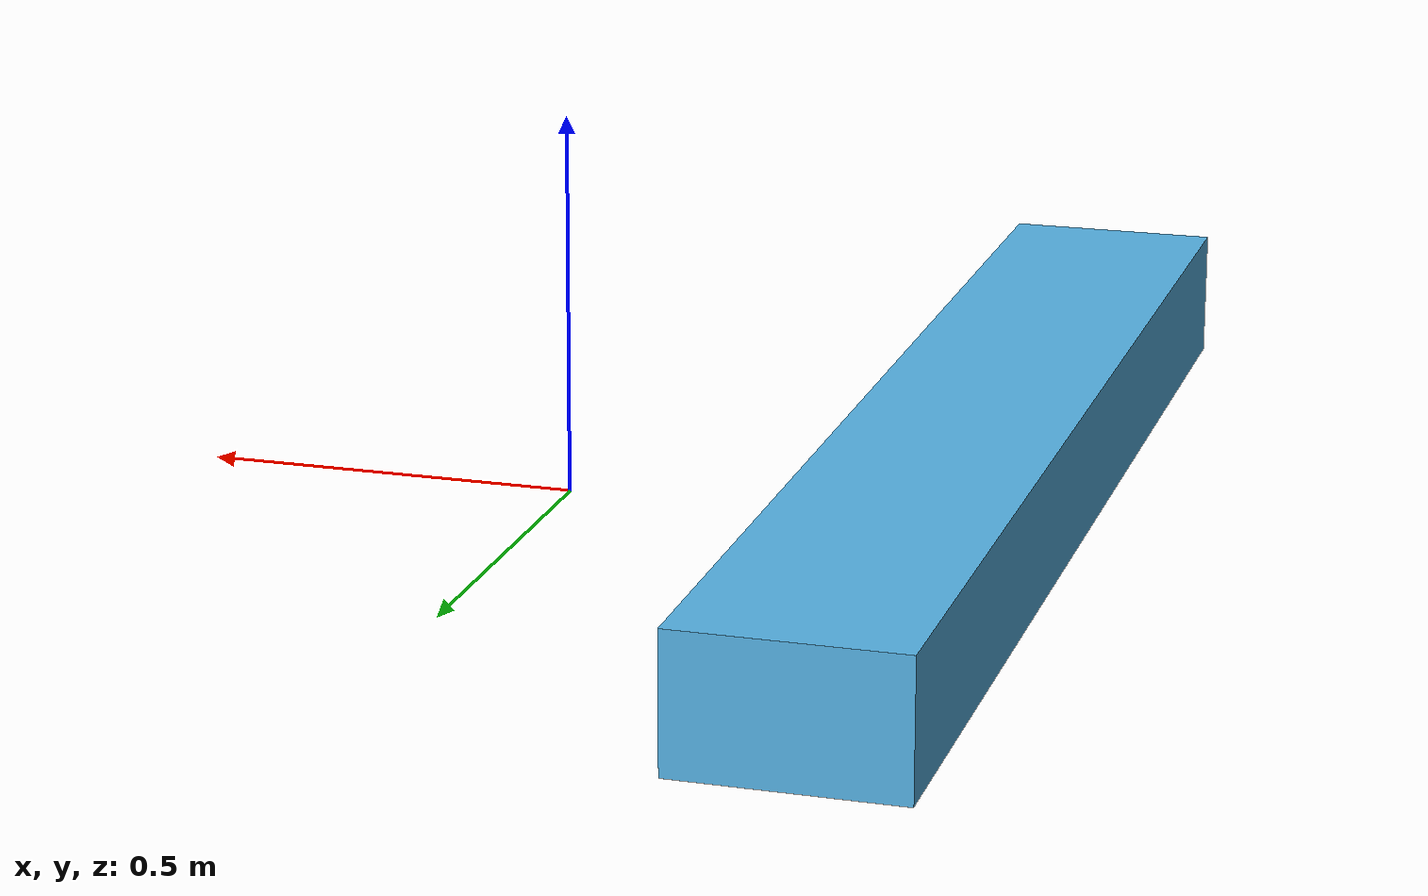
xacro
<?xml version="1.0"?>
<robot name="curb" xmlns:xacro="http://www.ros.org/wiki/xacro">
    <gazebo>
        <static>true</static>
    </gazebo>

    <xacro:property name="parent_name" value="world"/>
    <xacro:property name="step_height" default="0.170"/>
    <xacro:property name="step_depth" default="0.280"/>
    <xacro:property name="step_width" default="1.80"/>
    <xacro:property name="distance_to_origin" default="0.4"/>

    <link name="${parent_name}"/>

    <link name="step_1">
        <collision>
          <geometry>
            <box size="${step_depth} ${step_width} ${step_height}" />
          </geometry>
        </collision>

        <visual name='visual'>
          <geometry>
            <box size="${step_depth} ${step_width} ${step_height}" />
          </geometry>
        </visual>
        <inertial>
            <origin xyz="0 0 0" rpy="0 0 0"/>
            <mass value="1"/>
            <inertia
                    ixx="1"
                    ixy="1"
                    ixz="1"
                    iyy="1"
                    iyz="1"
                    izz="1" />
        </inertial>
    </link>

    <joint name="joint_0" type="fixed">
        <parent link="${parent_name}"/>
        <child link="step_1"/>
        <origin xyz="${-distance_to_origin - step_depth / 2} 0 ${step_height / 2}" rpy="0 0 0"/>
    </joint>
</robot>
